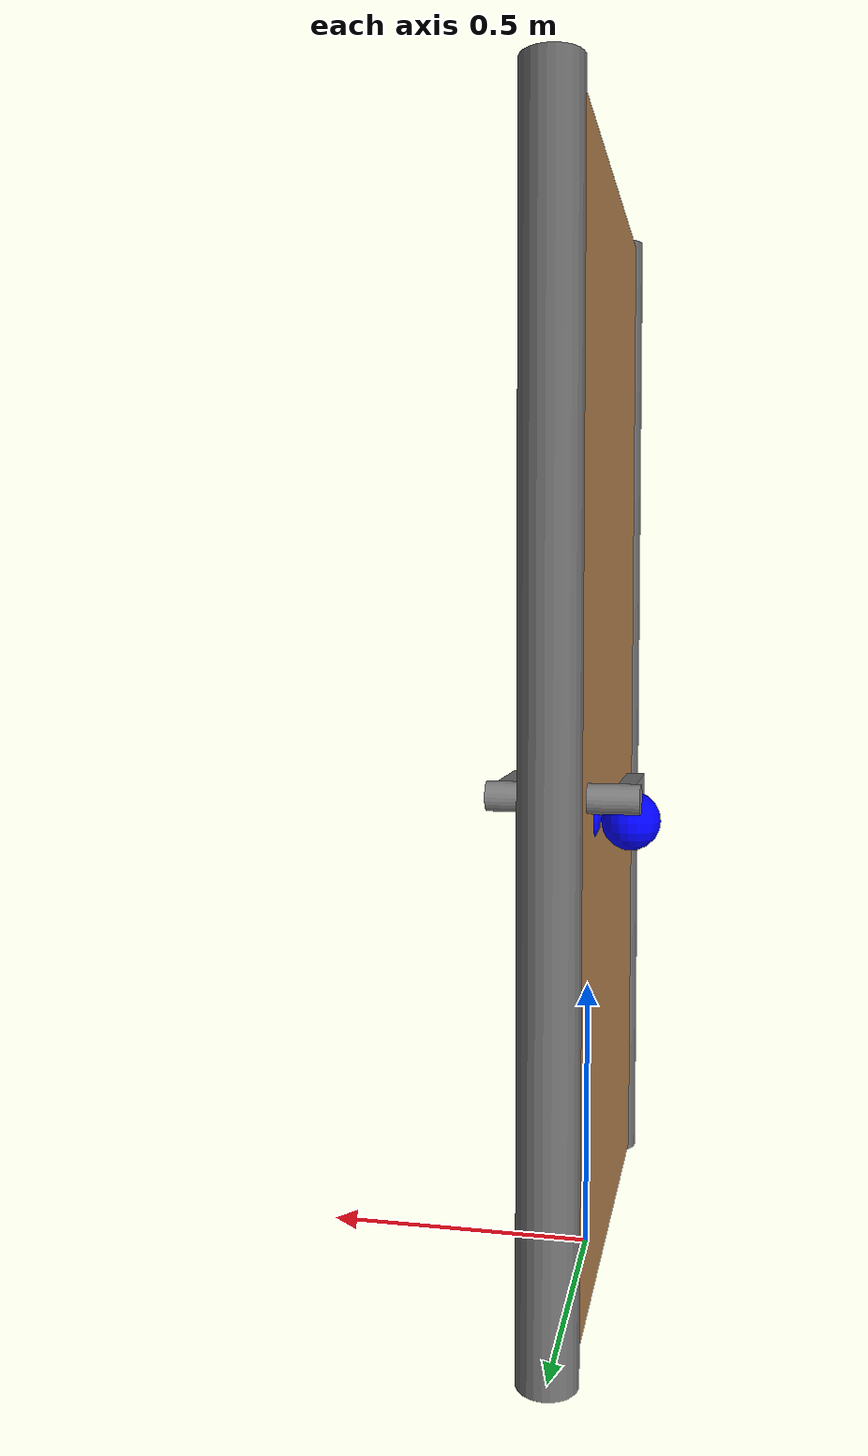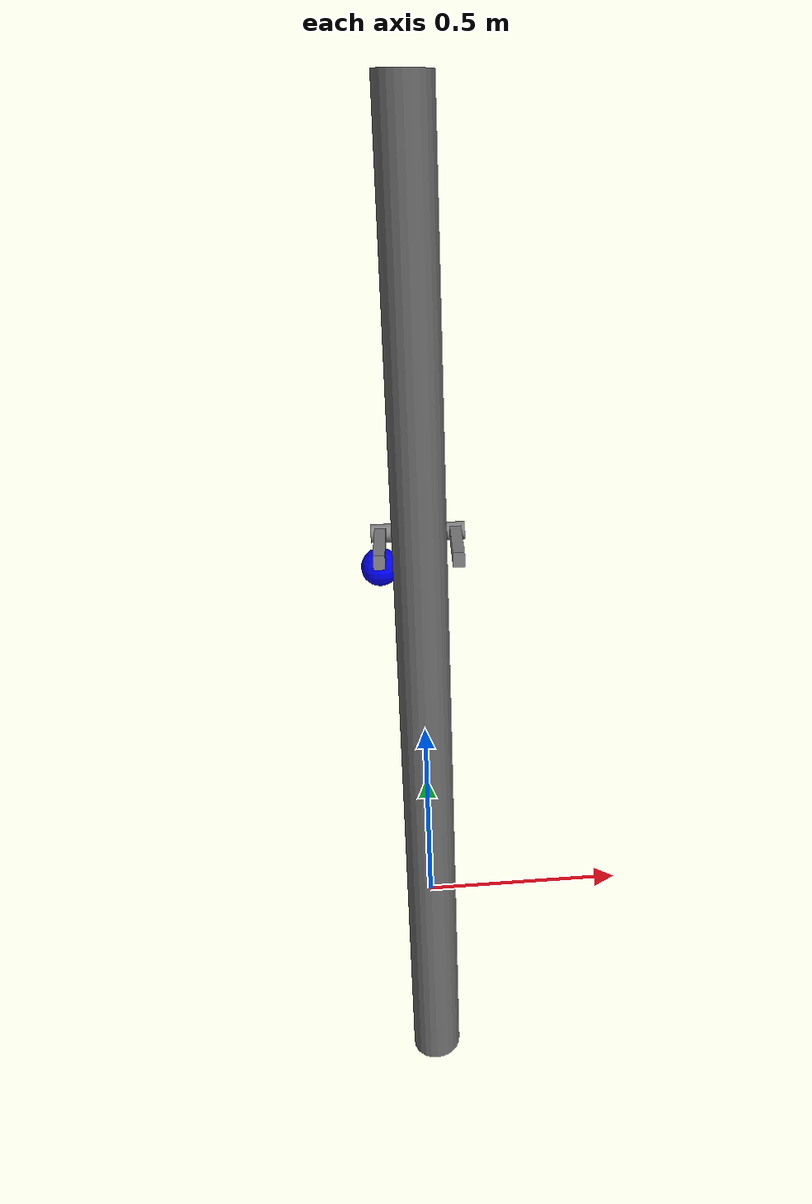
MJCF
<?xml version="1.0" encoding="utf-8"?>
<!-- from https://github.com/vikashplus/mj_envs/tree/master/mj_envs/hand_manipulation_suite/assets -->
<!-- Information about door can be found in this paper: https://arxiv.org/pdf/1709.10087.pdf -->

<mujoco model="door_lock">
  <asset>
    <texture file="../textures/light-wood.png" type="cube" name="light-wood" />
    <texture file="../textures/steel-brushed.png" type="cube" name="metal" />
    <texture file="../textures/navy.png" type="cube" name="glass" />
    <material name="MatLightWood" texture="light-wood" texrepeat="3 3" specular="0.4" shininess="0.1" />
    <material name="MatBright" texture="metal" specular="1" shininess="0.3" rgba="0.7 0.7 0.7 1" />
    <material name="MatMedium" texture="metal" specular="0.2" shininess="0.3" rgba="0.4 0.4 0.4 1" />
    <material name="MatDark" texture="metal" specular="0.2" shininess="0.3" rgba="0.1 0.1 0.1 1" />
    <material name="MatGlass" texture="glass" specular="1" shininess="0.3" rgba="1.0 1.0 1.0 1" />
  </asset>
    <worldbody>
      <body>
        <body name="object">
          <body quat="0 0 0 1" pos="0 0 1.0">
            <body name="frame" pos="0 0 0" quat="0.707107 0 0 0.707107">
              <geom name="geom_frame_right_visual"
                size="0.05 1.0" pos="0.5 0 0" type="cylinder"
                contype="0" conaffinity="0"  group="1"
                rgba="0.4 0.4 0.4 1"
                />
              <geom name="geom_frame_left_visual"
                size="0.05 1.0" pos="-0.5 0 0" type="cylinder"
                contype="0" conaffinity="0"  group="1"
                rgba="0.4 0.4 0.4 1"
                />

              <geom name="geom_latch_female"
                size="0.02 0.01 0.04" pos="-0.48 0.03 -0.1" type="box" rgba="0 0 0 0"
                group="0"
                />

            <body name="releasing_point" pos="-0.24 0.0 -0.15"/>
            <site name="releasing_point" pos="-0.24 0.0 -0.15" size="0.05" rgba="0 0 1 1" />

            <body name="door" pos="0 0 0">
              <inertial pos="0 0 0" mass="0.1" diaginertia="0.01 0.015 0.006"/>
              <!-- Density 20 kg/m^3 -->
              <joint name="hinge" pos="0.5 0 0" axis="0 0 -1" range="0.0 3.0" limited="true"
                damping="1" frictionloss="1"
                />

              <geom name="geom_panel"
                size="0.45 0.04 0.98" type="box"
                friction="1 1 1"
                group="0" rgba="0 0 0 0"
                />
              <geom name="geom_panel_visual"
                size="0.45 0.04 0.98" type="box"
                group="1" conaffinity="0" contype="0"
                material="MatLightWood"
                />

              <body name="latch_male" pos="-0.45 0 -0.1">
                <inertial pos="0 0 -0.005" mass="0.001" diaginertia="0.0001 0.0001 0.0001"/>
                <geom name="geom_latch_male"
                  fromto="0 0 0 -0.02 0 0" size="0.02" type="capsule"
                  friction="1 1 1"
                  group="0"
                  />
                <geom name="geom_latch_male_visual"
                  fromto="0 0 0 -0.02 0 0" size="0.02" type="capsule"
                  group="1" conaffinity="0" contype="0"
                  material="MatDark"
                  />
                <joint name="joint_latch"
                  axis="1 0 0" type="slide" range="0 0.02" limited="true"
                  />
              </body>

              <body name="rotating_point" pos="-0.24 -0.1 -0.15"/>
              <site name="rotating_point" pos="-0.24 -0.1 -0.15" size="0.05" rgba="0 0 1 1" />

              <body name="handle" pos="-0.35 0 -0.1">
                <inertial pos="-0.017762 0 0" quat="0.365653 0.605347 -0.36522 0.605365" mass="0.1" diaginertia="0.0483771 0.0410001 0.0111013" />
                <joint name="joint_handle" pos="0 0 0" axis="0 1 0" range="0 1.5708" limited="true"
                  frictionloss="0.1" damping="0" stiffness="1.0"
                  />

                <geom name="geom_handle_base"
                  fromto="0 0.125 0 0 -0.125 0" size="0.025" type="cylinder"
                  group="0"
                  />
                <geom name="geom_handle_front"
                  size="0.1 0.015 0.02" pos="0.1 -0.10 0" type="box"
                  group="0"
                  />
                <geom name="geom_handle_back"
                  size="0.1 0.015 0.02" pos="0.1  0.10 0" type="box"
                  group="0"
                  />

                <geom name="geom_handle_base_visual"
                  fromto="0 0.125 0 0 -0.125 0" size="0.025" type="cylinder"
                  group="1" conaffinity="0" contype="0"
                  material="MatBright"
                  />
                <geom name="geom_handle_front_visual"
                  size="0.1 0.015 0.02" pos="0.1 -0.10 0" type="box"
                  group="1" conaffinity="0" contype="0"
                  material="MatBright"
                  />
                <geom name="geom_handle_back_visual"
                  size="0.1 0.015 0.02" pos="0.1  0.10 0" type="box"
                  group="1" conaffinity="0" contype="0"
                  material="MatBright"
                  />
                  <!-- Don't render the door handle site by default -->
                <body name="grasping_point" pos="0.125 -0.1 0"/>
              </body>
            </body>
          </body>
        </body>
      </body>
      <site name="bottom_site" pos="0 0 -0.6" rgba="0 0 0 0" size="0.005"/>
      <site name="top_site" pos="0 0 0.6" rgba="0 0 0 0" size="0.005"/>
      <site name="horizontal_radius_site" pos="0.3 0 0" rgba="0 0 0 0" size="0.1"/>
    </body>
  </worldbody>

  <equality>
    <joint joint1="joint_handle" joint2="joint_latch" polycoef="0 26.18 0 0 0"
        solimp="0.95 0.99 0.001" solref="0.005 1"/>
  </equality>

</mujoco>
